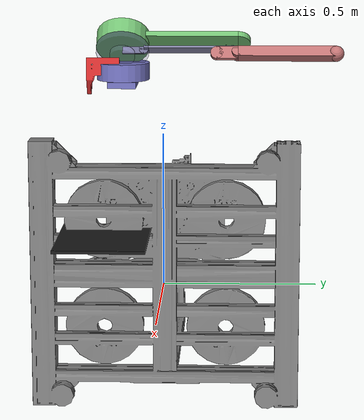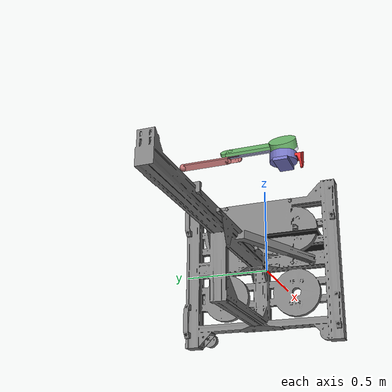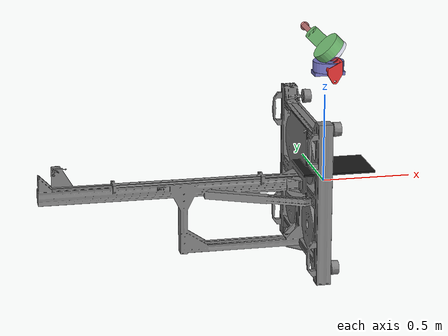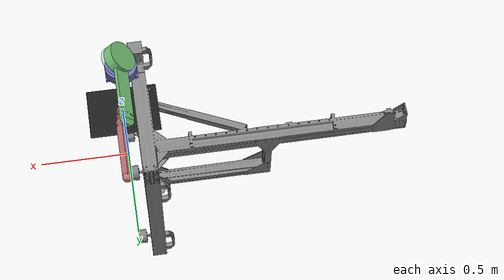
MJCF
<mujoco model="leg_two">
    <default>
        <geom contype="1" conaffinity="0" solref="0.005 1.0"/>

        <default class="part">
        <geom group="1" contype="2" conaffinity="1"/>
        </default>

        <default class="mockup">
        <geom group="1" contype="4"/>
        </default>

    </default>

    <asset>
        <material name="pelvis" rgba="0.45 0.45 0.75 1.0" />
        <material name="thigh" rgba="0.45 0.75 0.45 1.0" />
        <material name="shin" rgba="0.75 0.45 0.45 1.0" />
        <material name="foot" rgba="0.86 0.68 0.68 1.0" />
        <material name="loop1" rgba="0.52 0.52 0.65 1.0" />
        <material name="loop2" rgba="1.0 0.75 0.0 1.0" />
        <mesh name="cart" file="cart.STL"/>
        <mesh name="base" file="base.stl"/>
    </asset>

    <worldbody>
        <body name="base" pos="0.0 0.0 0.0">
            <!-- стойка робота -->
            <geom type="mesh" mesh="base" euler="0.0 0.0 90.0"  class="mockup"/>
            <!-- резиновый коврик -->
            <geom type="box" size="0.2 0.15 0.005" pos="0.0 -0.2 0.15" density="7700.0" rgba="0.1 0.1 0.1 1.0"/>

            <body name="cart" pos="0.0325 -0.14 0.75">
                <!-- каретка; к ней подсоединена вся нога -->
                <geom type="mesh" mesh="cart" euler="0.0 -180.0 -90.0" mass="0.2" rgba="0.9 0.2 0.2 1.0" class="mockup"/>
                <joint name="rail" type="slide" range="-0.5 0.5"/>

                <body name="pelvis" pos="-0.05 0.01 -0.085" euler = "0 0 90">
                    <!-- кронштейн для крепления первого В1, который приводит голень -->
                    <geom type="box" size="0.045 0.085 0.01" density="750" material="pelvis" class="part"/>
                    <!-- B1 с диаметром .85 -->
                    <geom type="cylinder" size="0.085 0.0275" pos="0 0 0.0375" zaxis="0 0 1"
                        material="pelvis" mass="1.74" class="part"/>

                    <body name="thigh" pos="0 0 0.1325" euler="-45 0 0">
                        <!-- 60ref было вместо 50 -->
                        <!-- тело звена; pos = box + 2cylinder + cylinder-->
                        <!-- фланец ко второму В1 -->
                        <geom type="cylinder" size="0.04 0.01" pos = "0 0 -0.0575" zaxis = "0 0 1"  rgba="0.45 0.45 0.75 0.25" class="part"/>
                        <!-- вторая часть фланеца к ротору второго В1 -->
                        <geom type="cylinder" size="0.085 0.01" pos = "0 0 -0.0375" zaxis = "0 0 1"  rgba="0.45 0.45 0.75 .25" class="part"/>
                        <geom type="cylinder" size="0.085 0.0275" pos="0.0 0.0 0.0" zaxis="0 0 1" mass="1.74" material="thigh" class="part"/>
                        <geom type="box" size="0.185 0.04 0.01" pos="0.185 0 0.0" density="2000" material="thigh" class="part"/>
                        <geom type="cylinder" size="0.04 0.01" pos="0.370 0 0" material="thigh" class="part"/>
                        <joint name="hip" type="hinge" ref="-45" damping="0.01"/>

                        <body name="shin" pos="0.370 0.0  -0.0475" euler="-90 0 0">
                        <!-- 115 ref было вместо 90-->
                            <geom type="box" size="0.1565 0.02 0.015" pos="0.1565 0 0.0" density="2000" material="shin" class="part"/>
                            <geom type="cylinder" size="0.02 0.015" pos="0 0 0" material="shin" class="part"/>
                            <geom type="cylinder" size="0.02 0.015" pos=".313 0 0" material="shin" class="part"/>
                            <site name='tip' size = "0.025" pos = ".313 0 0" material ="shin"/>
                            <joint name="knee" type="hinge" ref="-90" damping="0.01"/>
                            <body pos="0 0 0" euler = "20 0 0">
                                <geom type="box" size="0.034 0.02 0.01" pos="-.034 0 0" material = "shin"  density="2000" class = "part"/>
                                <geom type="cylinder" size=".02 .01" pos="-0.068 0 0" density="2000" material ="shin"/>
                            </body>

                            <!-- на ступню -->

                        </body>

                        <!-- на ступню -->

                        <body name="knee_lever" pos="0.0 0 -0.0325" euler="110 0 0">
                            <geom type="box" size=".034 .015 0.005" pos = ".034 0 0" material ="loop1" density="2000" zaxis = "0 0 1"  class="part"/>
                            <geom type="cylinder" size=".015 0.005" pos="0.068 0 0" material ="loop1" zaxis = "0 0 1" density="5000" class="part"/>
                            <joint name="joint_knee_lever" type = "hinge" axis="0 0 1" ref = "110"/>

                            <body name = 'knee_rod' pos=".068 0 0" euler = "-110 0 0">
                                <geom type="box" size=".185 .014 .0045 " pos = ".185 0 0" material ="loop1" density="2000" zaxis = "0 0 1"  class="part"/>
                                <geom type="cylinder" size=".014 .0045" pos="0.370 0 0" material ="loop1" zaxis = "0 0 1" density="5000" class="part"/>
                                <joint name="joint_knee_rod" type = "hinge" axis="0 0 1" ref = "-110"/>
                            </body>

                        </body>

                    </body>

                </body>

            </body>

        </body>

    </worldbody>

    <equality>
        <connect name="shin_constrain" body1="shin" body2="knee_rod" anchor="-0.0639 -0.02326 0.0" solref="0.0005 1.0"/>
    </equality>

   <actuator>
		<motor name="torque_hip" joint="hip"  gear="1" ctrllimited="true" ctrlrange="-100 100"/>
		<position name ="pos_servo_hip" joint="hip" kp="0"/>
		<velocity name ="vel_servo_hip" joint="hip" kv="0"/>

		<motor name="torque_knee" joint="joint_knee_lever"  gear="1" ctrllimited="true" ctrlrange="-100 100"/>
		<position name ="pos_servo_knee" joint="joint_knee_lever" kp="0"/>
		<velocity name ="vel_servo_knee" joint="joint_knee_lever" kv="0"/>

    </actuator>

    <sensor>
    </sensor>

</mujoco>
